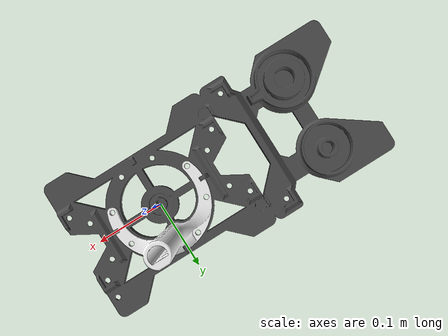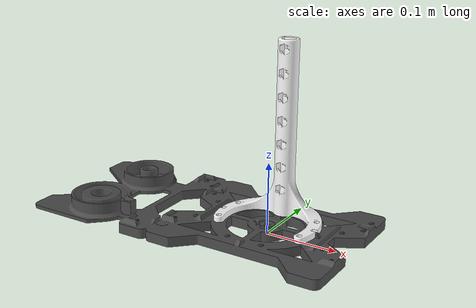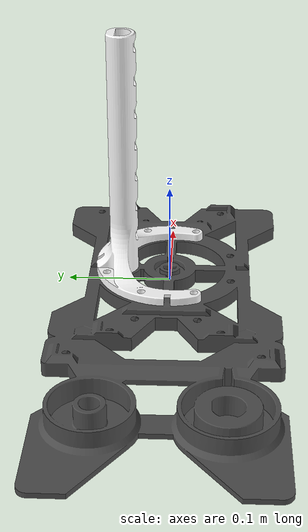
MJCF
<mujoco model="G5_Cylinder">

  <asset>
    <material name="object_material" rgba="1 1 1 1" shininess="0.3"/>

    <mesh name="g1234567_base_plate_visual" file="g1234567_base_plate_visual.stl" scale="1 1 1"/>
    <mesh name="g_plate_collision_part1" file="g_plate_collision_part1.stl" scale="1 1 1"/>
    <mesh name="g_plate_collision_part2" file="g_plate_collision_part2.stl" scale="1 1 1"/>
    <mesh name="g_plate_collision_part3" file="g_plate_collision_part3.stl" scale="1 1 1"/>
    <mesh name="g23456_rim_part_0" file="g23456_rim/part_0.obj" scale="1 1 1"/>
    <mesh name="g23456_rim_part_1" file="g23456_rim/part_1.obj" scale="1 1 1"/>
    <mesh name="g23456_rim_part_2" file="g23456_rim/part_2.obj" scale="1 1 1"/>
    <mesh name="g23456_rim_part_3" file="g23456_rim/part_3.obj" scale="1 1 1"/>
    <mesh name="g23456_rim_part_4" file="g23456_rim/part_4.obj" scale="1 1 1"/>
    <mesh name="g23456_rim_part_5" file="g23456_rim/part_5.obj" scale="1 1 1"/>
    <mesh name="g23456_rim_part_6" file="g23456_rim/part_6.obj" scale="1 1 1"/>
    <mesh name="g23456_rim_part_7" file="g23456_rim/part_7.obj" scale="1 1 1"/>
    <mesh name="g23456_rim_part_8" file="g23456_rim/part_8.obj" scale="1 1 1"/>
    <mesh name="g23456_rim_part_9" file="g23456_rim/part_9.obj" scale="1 1 1"/>
    <mesh name="g23456_rim_part_10" file="g23456_rim/part_10.obj" scale="1 1 1"/>
    <mesh name="g23456_rim_part_11" file="g23456_rim/part_11.obj" scale="1 1 1"/>
    <mesh name="g23456_rim_part_12" file="g23456_rim/part_12.obj" scale="1 1 1"/>
    <mesh name="g23456_rim_part_13" file="g23456_rim/part_13.obj" scale="1 1 1"/>
    <mesh name="g23456_rim_part_14" file="g23456_rim/part_14.obj" scale="1 1 1"/>
    <mesh name="g23456_rim_part_15" file="g23456_rim/part_15.obj" scale="1 1 1"/>
    <mesh name="g23456_rim_part_16" file="g23456_rim/part_16.obj" scale="1 1 1"/>
    <mesh name="g23456_rim_part_17" file="g23456_rim/part_17.obj" scale="1 1 1"/>

    <mesh name="g23456_cylinder_visual" file="g23456_cylinder_visual.stl" scale="1 1 1"/>
    <mesh name="g23456_cylinder_collision_part_0" file="g23456_cylinder_collision/part_0.obj" scale="1 1 1"/>
    <mesh name="g23456_cylinder_collision_part_1" file="g23456_cylinder_collision/part_1.obj" scale="1 1 1"/>
    <mesh name="g23456_cylinder_collision_part_2" file="g23456_cylinder_collision/part_2.obj" scale="1 1 1"/>
    <mesh name="g23456_cylinder_collision_part_3" file="g23456_cylinder_collision/part_3.obj" scale="1 1 1"/>
    <mesh name="g23456_cylinder_collision_part_4" file="g23456_cylinder_collision/part_4.obj" scale="1 1 1"/>
    <mesh name="g23456_cylinder_collision_part_5" file="g23456_cylinder_collision/part_5.obj" scale="1 1 1"/>
    <mesh name="g23456_cylinder_collision_part_6" file="g23456_cylinder_collision/part_6.obj" scale="1 1 1"/>
    <mesh name="g23456_cylinder_collision_part_7" file="g23456_cylinder_collision/part_7.obj" scale="1 1 1"/>
    <mesh name="g23456_cylinder_collision_part_8" file="g23456_cylinder_collision/part_8.obj" scale="1 1 1"/>
    <mesh name="g23456_cylinder_collision_part_9" file="g23456_cylinder_collision/part_9.obj" scale="1 1 1"/>
    <mesh name="g23456_cylinder_collision_part_10" file="g23456_cylinder_collision/part_10.obj" scale="1 1 1"/>
    <mesh name="g23456_cylinder_collision_part_11" file="g23456_cylinder_collision/part_11.obj" scale="1 1 1"/>
    <mesh name="g23456_cylinder_collision_part_12" file="g23456_cylinder_collision/part_12.obj" scale="1 1 1"/>
    <mesh name="g23456_cylinder_collision_part_13" file="g23456_cylinder_collision/part_13.obj" scale="1 1 1"/>
    <mesh name="g23456_cylinder_collision_part_14" file="g23456_cylinder_collision/part_14.obj" scale="1 1 1"/>
    <mesh name="g23456_cylinder_collision_part_15" file="g23456_cylinder_collision/part_15.obj" scale="1 1 1"/>
    <mesh name="g23456_cylinder_collision_part_16" file="g23456_cylinder_collision/part_16.obj" scale="1 1 1"/>
  </asset>

  <default>
    <default class="visual">
      <geom contype="0" conaffinity="0" group="2"/>
    </default>
    <default class="collision">
      <geom group="3"/>
    </default>
  </default>

  <worldbody>
    <body name="base_plate" pos="0 0 0">
      <geom name="g1234567_base_plate_visual" type="mesh" mesh="g1234567_base_plate_visual" rgba="0.3 0.3 0.3 1" mass="0" class="visual"/>
      <geom name="g_plate_collision_part1" type="mesh" mesh="g_plate_collision_part1" class="collision" density="248"/>
      <geom name="g_plate_collision_part2" type="mesh" mesh="g_plate_collision_part2" class="collision" density="248"/>
      <geom name="g_plate_collision_part3" type="mesh" mesh="g_plate_collision_part3" class="collision" density="248"/>
      <geom name="g23456_rim_part_0" type="mesh" mesh="g23456_rim_part_0" class="collision" density="248"/>
      <geom name="g23456_rim_part_1" type="mesh" mesh="g23456_rim_part_1" class="collision" density="248"/>
      <geom name="g23456_rim_part_2" type="mesh" mesh="g23456_rim_part_2" class="collision" density="248"/>
      <geom name="g23456_rim_part_3" type="mesh" mesh="g23456_rim_part_3" class="collision" density="248"/>
      <geom name="g23456_rim_part_4" type="mesh" mesh="g23456_rim_part_4" class="collision" density="248"/>
      <geom name="g23456_rim_part_5" type="mesh" mesh="g23456_rim_part_5" class="collision" density="248"/>
      <geom name="g23456_rim_part_6" type="mesh" mesh="g23456_rim_part_6" class="collision" density="248"/>
      <geom name="g23456_rim_part_7" type="mesh" mesh="g23456_rim_part_7" class="collision" density="248"/>
      <geom name="g23456_rim_part_8" type="mesh" mesh="g23456_rim_part_8" class="collision" density="248"/>
      <geom name="g23456_rim_part_9" type="mesh" mesh="g23456_rim_part_9" class="collision" density="248"/>
      <geom name="g23456_rim_part_10" type="mesh" mesh="g23456_rim_part_10" class="collision" density="248"/>
      <geom name="g23456_rim_part_11" type="mesh" mesh="g23456_rim_part_11" class="collision" density="248"/>
      <geom name="g23456_rim_part_12" type="mesh" mesh="g23456_rim_part_12" class="collision" density="248"/>
      <geom name="g23456_rim_part_13" type="mesh" mesh="g23456_rim_part_13" class="collision" density="248"/>
      <geom name="g23456_rim_part_14" type="mesh" mesh="g23456_rim_part_14" class="collision" density="248"/>
      <geom name="g23456_rim_part_15" type="mesh" mesh="g23456_rim_part_15" class="collision" density="248"/>
      <geom name="g23456_rim_part_16" type="mesh" mesh="g23456_rim_part_16" class="collision" density="248"/>
      <geom name="g23456_rim_part_17" type="mesh" mesh="g23456_rim_part_17" class="collision" density="248"/>

    </body>

    <body name="g23456_cylinder" pos="0 0 0">
      <joint name="g23456_free_joint" type="free"/>

      <geom name="g23456_cylinder_visual" type="mesh" mesh="g23456_cylinder_visual" material="object_material" mass="0" class="visual"/>
      <geom name="g23456_cylinder_collision_part_0" type="mesh" mesh="g23456_cylinder_collision_part_0" class="collision" density="248"/>
      <geom name="g23456_cylinder_collision_part_1" type="mesh" mesh="g23456_cylinder_collision_part_1" class="collision" density="248"/>
      <geom name="g23456_cylinder_collision_part_2" type="mesh" mesh="g23456_cylinder_collision_part_2" class="collision" density="248"/>
      <geom name="g23456_cylinder_collision_part_3" type="mesh" mesh="g23456_cylinder_collision_part_3" class="collision" density="248"/>
      <geom name="g23456_cylinder_collision_part_4" type="mesh" mesh="g23456_cylinder_collision_part_4" class="collision" density="248"/>
      <geom name="g23456_cylinder_collision_part_5" type="mesh" mesh="g23456_cylinder_collision_part_5" class="collision" density="248"/>
      <geom name="g23456_cylinder_collision_part_6" type="mesh" mesh="g23456_cylinder_collision_part_6" class="collision" density="248"/>
      <geom name="g23456_cylinder_collision_part_7" type="mesh" mesh="g23456_cylinder_collision_part_7" class="collision" density="248"/>
      <geom name="g23456_cylinder_collision_part_8" type="mesh" mesh="g23456_cylinder_collision_part_8" class="collision" density="248"/>
      <geom name="g23456_cylinder_collision_part_9" type="mesh" mesh="g23456_cylinder_collision_part_9" class="collision" density="248"/>
      <geom name="g23456_cylinder_collision_part_10" type="mesh" mesh="g23456_cylinder_collision_part_10" class="collision" density="248"/>
      <geom name="g23456_cylinder_collision_part_11" type="mesh" mesh="g23456_cylinder_collision_part_11" class="collision" density="248"/>
      <geom name="g23456_cylinder_collision_part_12" type="mesh" mesh="g23456_cylinder_collision_part_12" class="collision" density="248"/>
      <geom name="g23456_cylinder_collision_part_13" type="mesh" mesh="g23456_cylinder_collision_part_13" class="collision" density="248"/>
      <geom name="g23456_cylinder_collision_part_14" type="mesh" mesh="g23456_cylinder_collision_part_14" class="collision" density="248"/>
      <geom name="g23456_cylinder_collision_part_15" type="mesh" mesh="g23456_cylinder_collision_part_15" class="collision" density="248"/>
      <geom name="g23456_cylinder_collision_part_16" type="mesh" mesh="g23456_cylinder_collision_part_16" class="collision" density="248"/>
    </body>

  </worldbody>
</mujoco>
